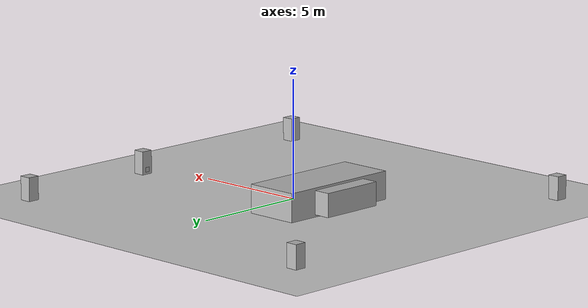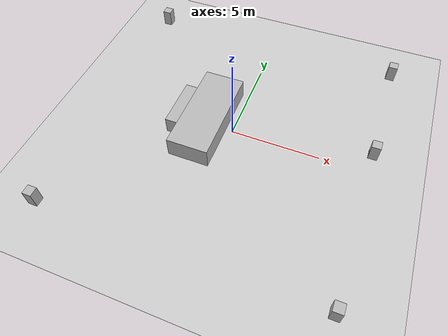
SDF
<sdf version="1.7">
 <world name="default">
  <light name="sun" type="directional">
   <pose>0 0 10 0 -0 0</pose>
   <diffuse>0.8 0.8 0.8 1</diffuse>
   <specular>0.2 0.2 0.2 1</specular>
   <attenuation>
    <range>1000</range>
    <constant>0.9</constant>
    <linear>0.01</linear>
    <quadratic>0.001</quadratic>
   </attenuation>
   <direction>-0.5 0.1 -0.9</direction>
   <spot><inner_angle>0</inner_angle><outer_angle>0</outer_angle><falloff>0</falloff></spot>
  </light>
  <model name="ground_plane">
   <static>1</static>
   <link name="link">
    <collision name="collision">
     <geometry><plane><normal>0 0 1</normal><size>100 100</size></plane></geometry>
     <surface>
      <contact><collide_bitmask>65535</collide_bitmask></contact>
      <friction><ode><mu>100</mu><mu2>50</mu2></ode></friction>
     </surface>
    </collision>
    <visual name="visual">
     <cast_shadows>0</cast_shadows>
     <geometry><plane><normal>0 0 1</normal><size>100 100</size></plane></geometry>
     <material>
      <script><uri>file://media/materials/scripts/gazebo.material</uri><name>Gazebo/Grey</name></script>
     </material>
    </visual>
   </link>
  </model>
  <model name="house">
   <pose>-1.55 0.119994 0.349933 2.5e-05 -0 0</pose>
   <link name="house_main">
    <pose>0 0 0.25 0 -0 0</pose>
    <collision name="collision"><geometry><box><size>2.3 5.45 1.2</size></box></geometry></collision>
    <visual name="visual"><geometry><box><size>2.3 5.45 1.2</size></box></geometry></visual>
    <inertial>
     <inertia><ixx>1</ixx><ixy>0</ixy><ixz>0</ixz><iyy>1</iyy><iyz>0</iyz><izz>1</izz></inertia>
     <mass>1</mass>
    </inertial>
   </link>
   <link name="house_entrance">
    <pose>-1 0 0.25 0 -0 0</pose>
    <collision name="collision"><geometry><box><size>1.75 2.8 1</size></box></geometry></collision>
    <visual name="visual"><geometry><box><size>1.75 2.8 1</size></box></geometry></visual>
    <inertial>
     <inertia><ixx>1</ixx><ixy>0</ixy><ixz>0</ixz><iyy>1</iyy><iyz>0</iyz><izz>1</izz></inertia>
     <mass>1</mass>
    </inertial>
   </link>
  </model>
  <model name="charger">
   <static>1</static>
   <link name="charger_body_link">
    <collision name="charger_body_collision"><geometry><box><size>0.5 0.5 1</size></box></geometry></collision>
    <visual name="charger_body_visual"><geometry><box><size>0.5 0.5 1</size></box></geometry></visual>
   </link>
   <link name="aruco_marker_link">
    <collision name="aruco_marker_collision"><geometry><box><size>0.2 0.01 0.2</size></box></geometry></collision>
    <visual name="charger_visual">
     <geometry><box><size>0.2 0.01 0.2</size></box></geometry>
     <material>
      <script>
       <uri>file://src/models/aruco_markers/materials/scripts</uri>
       <uri>file://src/models/aruco_markers/textures/aruco_marker_42.png</uri>
       <name>aruco_marker_42</name>
      </script>
     </material>
     <pose>0 -0.25 -0.3 0 -0 0</pose>
    </visual>
   </link>
   <pose>7.68 1.22 0.5 0 0 -1.57</pose>
  </model>
  <model name="tower_left_top">
   <static>1</static>
   <link name="tower_left_top_link">
    <collision name="tower_left_top_collision"><geometry><box><size>0.5 0.5 1</size></box></geometry></collision>
    <visual name="tower_left_top_visual"><geometry><box><size>0.5 0.5 1</size></box></geometry></visual>
   </link>
   <pose>-7.62 7.62 0.5 0 -0 0</pose>
  </model>
  <model name="tower_right_top">
   <static>1</static>
   <link name="tower_right_top_link">
    <collision name="tower_right_top_collision"><geometry><box><size>0.5 0.5 1</size></box></geometry></collision>
    <visual name="tower_right_top_visual"><geometry><box><size>0.5 0.5 1</size></box></geometry></visual>
   </link>
   <pose>7.62 7.62 0.5 0 -0 0</pose>
  </model>
  <model name="tower_right_bottom">
   <static>1</static>
   <link name="tower_right_bottom_link">
    <collision name="tower_right_bottom_collision">
     <geometry><box><size>0.5 0.5 1</size></box></geometry>
    </collision>
    <visual name="tower_right_bottom_visual"><geometry><box><size>0.5 0.5 1</size></box></geometry></visual>
   </link>
   <pose>7.62 -7.62 0.5 0 -0 0</pose>
  </model>
  <model name="tower_left_bottom">
   <static>1</static>
   <link name="tower_left_bottom_link">
    <collision name="tower_left_bottom_collision">
     <geometry><box><size>0.5 0.5 1</size></box></geometry>
    </collision>
    <visual name="tower_left_bottom_visual"><geometry><box><size>0.5 0.5 1</size></box></geometry></visual>
   </link>
   <pose>-7.62 -7.62 0.5 0 -0 0</pose>
  </model>
  <gravity>0 0 -9.8</gravity>
  <magnetic_field>6e-06 2.3e-05 -4.2e-05</magnetic_field>
  <atmosphere type="adiabatic"/>
  <physics type="ode">
   <max_step_size>0.001</max_step_size>
   <real_time_factor>1</real_time_factor>
   <real_time_update_rate>1000</real_time_update_rate>
  </physics>
  <scene><ambient>0.4 0.4 0.4 1</ambient><background>0.7 0.7 0.7 1</background><shadows>1</shadows></scene>
  <spherical_coordinates>
   <surface_model>EARTH_WGS84</surface_model>
   <latitude_deg>44.98</latitude_deg>
   <longitude_deg>-93.27</longitude_deg>
   <elevation>256</elevation>
   <heading_deg>0</heading_deg>
  </spherical_coordinates>
  <plugin name="gazebo_ros_state" filename="libgazebo_ros_state.so">
   <ros><namespace>/gazebo</namespace></ros>
   <update_rate>1.0</update_rate>
  </plugin>
  <audio><device>default</device></audio>
 </world>
</sdf>
